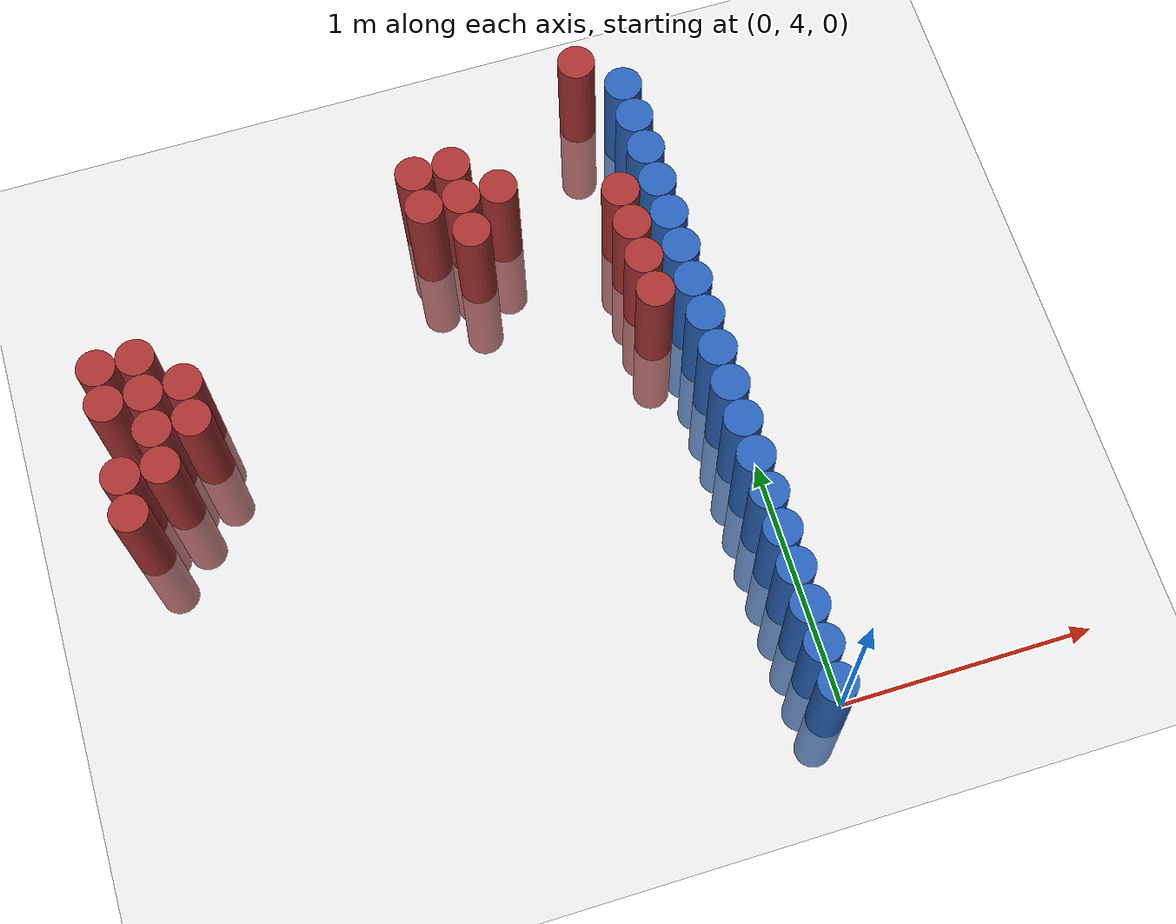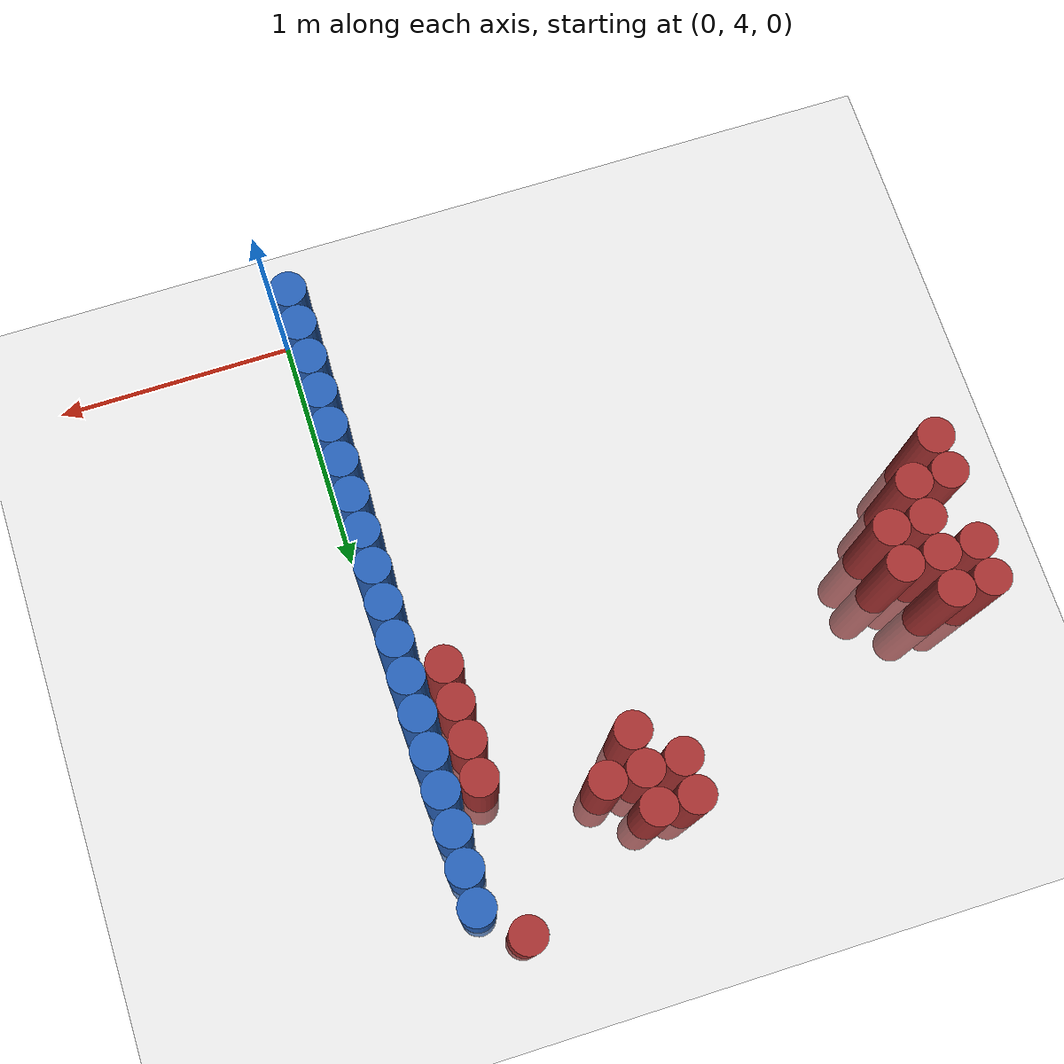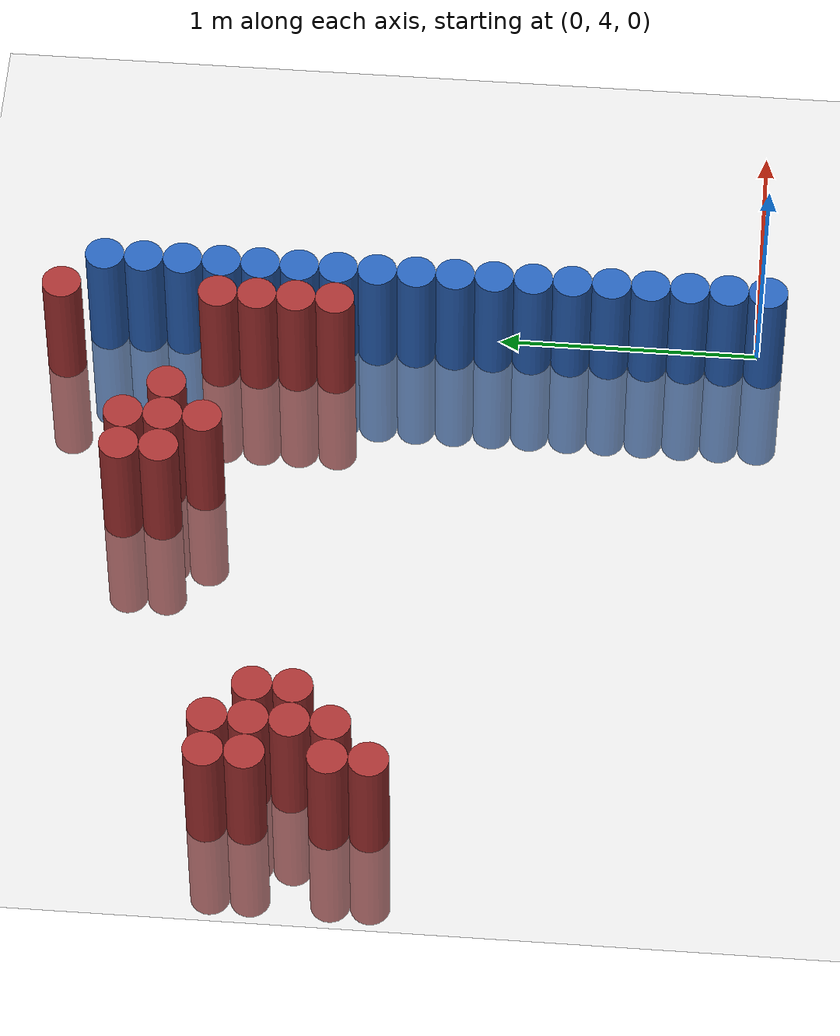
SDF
<sdf version="1.6">
 <world name="default">
  <model name="ground_plane">
   <static>1</static>
   <link name="link">
    <collision name="collision">
     <geometry><plane><normal>0 0 1</normal><size>100 100</size></plane></geometry>
     <surface><friction><ode><mu>100</mu><mu2>50</mu2></ode></friction></surface>
    </collision>
    <visual name="visual">
     <cast_shadows>0</cast_shadows>
     <geometry><plane><normal>0 0 1</normal><size>100 100</size></plane></geometry>
     <material>
      <script><uri>file://media/materials/scripts/gazebo.material</uri><name>Gazebo/Grey</name></script>
     </material>
    </visual>
   </link>
  </model>
  <model name="unit_cylinder_80">
   <static>1</static>
   <pose>-0.075000 3.975000 0.000000 0.000000 0.000000 0.000000</pose>
   <link name="link">
    <inertial>
     <mass>1</mass>
     <inertia><ixx>0.145833</ixx><ixy>0</ixy><ixz>0</ixz><iyy>0.145833</iyy><iyz>0</iyz><izz>0.125</izz></inertia>
    </inertial>
    <collision name="collision">
     <geometry><cylinder><radius>0.075000</radius><length>1</length></cylinder></geometry>
    </collision>
    <visual name="visual">
     <geometry><cylinder><radius>0.075000</radius><length>1</length></cylinder></geometry>
     <material>
      <ambient>0.152000 0.379000 0.720000 1</ambient>
      <diffuse>0.152000 0.379000 0.720000 1</diffuse>
     </material>
     <material>
      <script><name>Gazebo/Grey</name><uri>file://media/materials/scripts/gazebo.material</uri></script>
     </material>
    </visual>
    <sensor name="sensor_contact" type="contact"><contact><collision>collision</collision></contact></sensor>
   </link>
   <plugin filename="gz-sim-touchplugin-system" name="gz::sim::systems::TouchPlugin">
    <target>robot</target>
    <namespace>robot</namespace>
    <time>0.001</time>
    <enabled>true</enabled>
   </plugin>
  </model>
  <model name="unit_cylinder_82">
   <static>1</static>
   <pose>-0.075000 4.125000 0.000000 0.000000 0.000000 0.000000</pose>
   <link name="link">
    <inertial>
     <mass>1</mass>
     <inertia><ixx>0.145833</ixx><ixy>0</ixy><ixz>0</ixz><iyy>0.145833</iyy><iyz>0</iyz><izz>0.125</izz></inertia>
    </inertial>
    <collision name="collision">
     <geometry><cylinder><radius>0.075000</radius><length>1</length></cylinder></geometry>
    </collision>
    <visual name="visual">
     <geometry><cylinder><radius>0.075000</radius><length>1</length></cylinder></geometry>
     <material>
      <ambient>0.152000 0.379000 0.720000 1</ambient>
      <diffuse>0.152000 0.379000 0.720000 1</diffuse>
     </material>
     <material>
      <script><name>Gazebo/Grey</name><uri>file://media/materials/scripts/gazebo.material</uri></script>
     </material>
    </visual>
    <sensor name="sensor_contact" type="contact"><contact><collision>collision</collision></contact></sensor>
   </link>
   <plugin filename="gz-sim-touchplugin-system" name="gz::sim::systems::TouchPlugin">
    <target>robot</target>
    <namespace>robot</namespace>
    <time>0.001</time>
    <enabled>true</enabled>
   </plugin>
  </model>
  <model name="unit_cylinder_84">
   <static>1</static>
   <pose>-0.075000 4.275000 0.000000 0.000000 0.000000 0.000000</pose>
   <link name="link">
    <inertial>
     <mass>1</mass>
     <inertia><ixx>0.145833</ixx><ixy>0</ixy><ixz>0</ixz><iyy>0.145833</iyy><iyz>0</iyz><izz>0.125</izz></inertia>
    </inertial>
    <collision name="collision">
     <geometry><cylinder><radius>0.075000</radius><length>1</length></cylinder></geometry>
    </collision>
    <visual name="visual">
     <geometry><cylinder><radius>0.075000</radius><length>1</length></cylinder></geometry>
     <material>
      <ambient>0.152000 0.379000 0.720000 1</ambient>
      <diffuse>0.152000 0.379000 0.720000 1</diffuse>
     </material>
     <material>
      <script><name>Gazebo/Grey</name><uri>file://media/materials/scripts/gazebo.material</uri></script>
     </material>
    </visual>
    <sensor name="sensor_contact" type="contact"><contact><collision>collision</collision></contact></sensor>
   </link>
   <plugin filename="gz-sim-touchplugin-system" name="gz::sim::systems::TouchPlugin">
    <target>robot</target>
    <namespace>robot</namespace>
    <time>0.001</time>
    <enabled>true</enabled>
   </plugin>
  </model>
  <model name="unit_cylinder_86">
   <static>1</static>
   <pose>-0.075000 4.425000 0.000000 0.000000 0.000000 0.000000</pose>
   <link name="link">
    <inertial>
     <mass>1</mass>
     <inertia><ixx>0.145833</ixx><ixy>0</ixy><ixz>0</ixz><iyy>0.145833</iyy><iyz>0</iyz><izz>0.125</izz></inertia>
    </inertial>
    <collision name="collision">
     <geometry><cylinder><radius>0.075000</radius><length>1</length></cylinder></geometry>
    </collision>
    <visual name="visual">
     <geometry><cylinder><radius>0.075000</radius><length>1</length></cylinder></geometry>
     <material>
      <ambient>0.152000 0.379000 0.720000 1</ambient>
      <diffuse>0.152000 0.379000 0.720000 1</diffuse>
     </material>
     <material>
      <script><name>Gazebo/Grey</name><uri>file://media/materials/scripts/gazebo.material</uri></script>
     </material>
    </visual>
    <sensor name="sensor_contact" type="contact"><contact><collision>collision</collision></contact></sensor>
   </link>
   <plugin filename="gz-sim-touchplugin-system" name="gz::sim::systems::TouchPlugin">
    <target>robot</target>
    <namespace>robot</namespace>
    <time>0.001</time>
    <enabled>true</enabled>
   </plugin>
  </model>
  <model name="unit_cylinder_88">
   <static>1</static>
   <pose>-0.075000 4.575000 0.000000 0.000000 0.000000 0.000000</pose>
   <link name="link">
    <inertial>
     <mass>1</mass>
     <inertia><ixx>0.145833</ixx><ixy>0</ixy><ixz>0</ixz><iyy>0.145833</iyy><iyz>0</iyz><izz>0.125</izz></inertia>
    </inertial>
    <collision name="collision">
     <geometry><cylinder><radius>0.075000</radius><length>1</length></cylinder></geometry>
    </collision>
    <visual name="visual">
     <geometry><cylinder><radius>0.075000</radius><length>1</length></cylinder></geometry>
     <material>
      <ambient>0.152000 0.379000 0.720000 1</ambient>
      <diffuse>0.152000 0.379000 0.720000 1</diffuse>
     </material>
     <material>
      <script><name>Gazebo/Grey</name><uri>file://media/materials/scripts/gazebo.material</uri></script>
     </material>
    </visual>
    <sensor name="sensor_contact" type="contact"><contact><collision>collision</collision></contact></sensor>
   </link>
   <plugin filename="gz-sim-touchplugin-system" name="gz::sim::systems::TouchPlugin">
    <target>robot</target>
    <namespace>robot</namespace>
    <time>0.001</time>
    <enabled>true</enabled>
   </plugin>
  </model>
  <model name="unit_cylinder_90">
   <static>1</static>
   <pose>-0.075000 4.725000 0.000000 0.000000 0.000000 0.000000</pose>
   <link name="link">
    <inertial>
     <mass>1</mass>
     <inertia><ixx>0.145833</ixx><ixy>0</ixy><ixz>0</ixz><iyy>0.145833</iyy><iyz>0</iyz><izz>0.125</izz></inertia>
    </inertial>
    <collision name="collision">
     <geometry><cylinder><radius>0.075000</radius><length>1</length></cylinder></geometry>
    </collision>
    <visual name="visual">
     <geometry><cylinder><radius>0.075000</radius><length>1</length></cylinder></geometry>
     <material>
      <ambient>0.152000 0.379000 0.720000 1</ambient>
      <diffuse>0.152000 0.379000 0.720000 1</diffuse>
     </material>
     <material>
      <script><name>Gazebo/Grey</name><uri>file://media/materials/scripts/gazebo.material</uri></script>
     </material>
    </visual>
    <sensor name="sensor_contact" type="contact"><contact><collision>collision</collision></contact></sensor>
   </link>
   <plugin filename="gz-sim-touchplugin-system" name="gz::sim::systems::TouchPlugin">
    <target>robot</target>
    <namespace>robot</namespace>
    <time>0.001</time>
    <enabled>true</enabled>
   </plugin>
  </model>
  <model name="unit_cylinder_92">
   <static>1</static>
   <pose>-0.075000 4.875000 0.000000 0.000000 0.000000 0.000000</pose>
   <link name="link">
    <inertial>
     <mass>1</mass>
     <inertia><ixx>0.145833</ixx><ixy>0</ixy><ixz>0</ixz><iyy>0.145833</iyy><iyz>0</iyz><izz>0.125</izz></inertia>
    </inertial>
    <collision name="collision">
     <geometry><cylinder><radius>0.075000</radius><length>1</length></cylinder></geometry>
    </collision>
    <visual name="visual">
     <geometry><cylinder><radius>0.075000</radius><length>1</length></cylinder></geometry>
     <material>
      <ambient>0.152000 0.379000 0.720000 1</ambient>
      <diffuse>0.152000 0.379000 0.720000 1</diffuse>
     </material>
     <material>
      <script><name>Gazebo/Grey</name><uri>file://media/materials/scripts/gazebo.material</uri></script>
     </material>
    </visual>
    <sensor name="sensor_contact" type="contact"><contact><collision>collision</collision></contact></sensor>
   </link>
   <plugin filename="gz-sim-touchplugin-system" name="gz::sim::systems::TouchPlugin">
    <target>robot</target>
    <namespace>robot</namespace>
    <time>0.001</time>
    <enabled>true</enabled>
   </plugin>
  </model>
  <model name="unit_cylinder_94">
   <static>1</static>
   <pose>-0.075000 5.025000 0.000000 0.000000 0.000000 0.000000</pose>
   <link name="link">
    <inertial>
     <mass>1</mass>
     <inertia><ixx>0.145833</ixx><ixy>0</ixy><ixz>0</ixz><iyy>0.145833</iyy><iyz>0</iyz><izz>0.125</izz></inertia>
    </inertial>
    <collision name="collision">
     <geometry><cylinder><radius>0.075000</radius><length>1</length></cylinder></geometry>
    </collision>
    <visual name="visual">
     <geometry><cylinder><radius>0.075000</radius><length>1</length></cylinder></geometry>
     <material>
      <ambient>0.152000 0.379000 0.720000 1</ambient>
      <diffuse>0.152000 0.379000 0.720000 1</diffuse>
     </material>
     <material>
      <script><name>Gazebo/Grey</name><uri>file://media/materials/scripts/gazebo.material</uri></script>
     </material>
    </visual>
    <sensor name="sensor_contact" type="contact"><contact><collision>collision</collision></contact></sensor>
   </link>
   <plugin filename="gz-sim-touchplugin-system" name="gz::sim::systems::TouchPlugin">
    <target>robot</target>
    <namespace>robot</namespace>
    <time>0.001</time>
    <enabled>true</enabled>
   </plugin>
  </model>
  <model name="unit_cylinder_225">
   <static>1</static>
   <pose>-2.325000 5.325000 0.000000 0.000000 0.000000 0.000000</pose>
   <link name="link">
    <inertial>
     <mass>1</mass>
     <inertia><ixx>0.145833</ixx><ixy>0</ixy><ixz>0</ixz><iyy>0.145833</iyy><iyz>0</iyz><izz>0.125</izz></inertia>
    </inertial>
    <collision name="collision">
     <geometry><cylinder><radius>0.075000</radius><length>1</length></cylinder></geometry>
    </collision>
    <visual name="visual">
     <geometry><cylinder><radius>0.075000</radius><length>1</length></cylinder></geometry>
     <material>
      <ambient>0.648000 0.192000 0.192000 1</ambient>
      <diffuse>0.648000 0.192000 0.192000 1</diffuse>
     </material>
     <material>
      <script><name>Gazebo/Grey</name><uri>file://media/materials/scripts/gazebo.material</uri></script>
     </material>
    </visual>
    <sensor name="sensor_contact" type="contact"><contact><collision>collision</collision></contact></sensor>
   </link>
   <plugin filename="gz-sim-touchplugin-system" name="gz::sim::systems::TouchPlugin">
    <target>robot</target>
    <namespace>robot</namespace>
    <time>0.001</time>
    <enabled>true</enabled>
   </plugin>
  </model>
  <model name="unit_cylinder_226">
   <static>1</static>
   <pose>-2.325000 5.475000 0.000000 0.000000 0.000000 0.000000</pose>
   <link name="link">
    <inertial>
     <mass>1</mass>
     <inertia><ixx>0.145833</ixx><ixy>0</ixy><ixz>0</ixz><iyy>0.145833</iyy><iyz>0</iyz><izz>0.125</izz></inertia>
    </inertial>
    <collision name="collision">
     <geometry><cylinder><radius>0.075000</radius><length>1</length></cylinder></geometry>
    </collision>
    <visual name="visual">
     <geometry><cylinder><radius>0.075000</radius><length>1</length></cylinder></geometry>
     <material>
      <ambient>0.648000 0.192000 0.192000 1</ambient>
      <diffuse>0.648000 0.192000 0.192000 1</diffuse>
     </material>
     <material>
      <script><name>Gazebo/Grey</name><uri>file://media/materials/scripts/gazebo.material</uri></script>
     </material>
    </visual>
    <sensor name="sensor_contact" type="contact"><contact><collision>collision</collision></contact></sensor>
   </link>
   <plugin filename="gz-sim-touchplugin-system" name="gz::sim::systems::TouchPlugin">
    <target>robot</target>
    <namespace>robot</namespace>
    <time>0.001</time>
    <enabled>true</enabled>
   </plugin>
  </model>
  <model name="unit_cylinder_227">
   <static>1</static>
   <pose>-2.325000 5.775000 0.000000 0.000000 0.000000 0.000000</pose>
   <link name="link">
    <inertial>
     <mass>1</mass>
     <inertia><ixx>0.145833</ixx><ixy>0</ixy><ixz>0</ixz><iyy>0.145833</iyy><iyz>0</iyz><izz>0.125</izz></inertia>
    </inertial>
    <collision name="collision">
     <geometry><cylinder><radius>0.075000</radius><length>1</length></cylinder></geometry>
    </collision>
    <visual name="visual">
     <geometry><cylinder><radius>0.075000</radius><length>1</length></cylinder></geometry>
     <material>
      <ambient>0.648000 0.192000 0.192000 1</ambient>
      <diffuse>0.648000 0.192000 0.192000 1</diffuse>
     </material>
     <material>
      <script><name>Gazebo/Grey</name><uri>file://media/materials/scripts/gazebo.material</uri></script>
     </material>
    </visual>
    <sensor name="sensor_contact" type="contact"><contact><collision>collision</collision></contact></sensor>
   </link>
   <plugin filename="gz-sim-touchplugin-system" name="gz::sim::systems::TouchPlugin">
    <target>robot</target>
    <namespace>robot</namespace>
    <time>0.001</time>
    <enabled>true</enabled>
   </plugin>
  </model>
  <model name="unit_cylinder_228">
   <static>1</static>
   <pose>-2.325000 5.925000 0.000000 0.000000 0.000000 0.000000</pose>
   <link name="link">
    <inertial>
     <mass>1</mass>
     <inertia><ixx>0.145833</ixx><ixy>0</ixy><ixz>0</ixz><iyy>0.145833</iyy><iyz>0</iyz><izz>0.125</izz></inertia>
    </inertial>
    <collision name="collision">
     <geometry><cylinder><radius>0.075000</radius><length>1</length></cylinder></geometry>
    </collision>
    <visual name="visual">
     <geometry><cylinder><radius>0.075000</radius><length>1</length></cylinder></geometry>
     <material>
      <ambient>0.648000 0.192000 0.192000 1</ambient>
      <diffuse>0.648000 0.192000 0.192000 1</diffuse>
     </material>
     <material>
      <script><name>Gazebo/Grey</name><uri>file://media/materials/scripts/gazebo.material</uri></script>
     </material>
    </visual>
    <sensor name="sensor_contact" type="contact"><contact><collision>collision</collision></contact></sensor>
   </link>
   <plugin filename="gz-sim-touchplugin-system" name="gz::sim::systems::TouchPlugin">
    <target>robot</target>
    <namespace>robot</namespace>
    <time>0.001</time>
    <enabled>true</enabled>
   </plugin>
  </model>
  <model name="unit_cylinder_232">
   <static>1</static>
   <pose>-2.175000 5.475000 0.000000 0.000000 0.000000 0.000000</pose>
   <link name="link">
    <inertial>
     <mass>1</mass>
     <inertia><ixx>0.145833</ixx><ixy>0</ixy><ixz>0</ixz><iyy>0.145833</iyy><iyz>0</iyz><izz>0.125</izz></inertia>
    </inertial>
    <collision name="collision">
     <geometry><cylinder><radius>0.075000</radius><length>1</length></cylinder></geometry>
    </collision>
    <visual name="visual">
     <geometry><cylinder><radius>0.075000</radius><length>1</length></cylinder></geometry>
     <material>
      <ambient>0.648000 0.192000 0.192000 1</ambient>
      <diffuse>0.648000 0.192000 0.192000 1</diffuse>
     </material>
     <material>
      <script><name>Gazebo/Grey</name><uri>file://media/materials/scripts/gazebo.material</uri></script>
     </material>
    </visual>
    <sensor name="sensor_contact" type="contact"><contact><collision>collision</collision></contact></sensor>
   </link>
   <plugin filename="gz-sim-touchplugin-system" name="gz::sim::systems::TouchPlugin">
    <target>robot</target>
    <namespace>robot</namespace>
    <time>0.001</time>
    <enabled>true</enabled>
   </plugin>
  </model>
  <model name="unit_cylinder_233">
   <static>1</static>
   <pose>-2.175000 5.625000 0.000000 0.000000 0.000000 0.000000</pose>
   <link name="link">
    <inertial>
     <mass>1</mass>
     <inertia><ixx>0.145833</ixx><ixy>0</ixy><ixz>0</ixz><iyy>0.145833</iyy><iyz>0</iyz><izz>0.125</izz></inertia>
    </inertial>
    <collision name="collision">
     <geometry><cylinder><radius>0.075000</radius><length>1</length></cylinder></geometry>
    </collision>
    <visual name="visual">
     <geometry><cylinder><radius>0.075000</radius><length>1</length></cylinder></geometry>
     <material>
      <ambient>0.648000 0.192000 0.192000 1</ambient>
      <diffuse>0.648000 0.192000 0.192000 1</diffuse>
     </material>
     <material>
      <script><name>Gazebo/Grey</name><uri>file://media/materials/scripts/gazebo.material</uri></script>
     </material>
    </visual>
    <sensor name="sensor_contact" type="contact"><contact><collision>collision</collision></contact></sensor>
   </link>
   <plugin filename="gz-sim-touchplugin-system" name="gz::sim::systems::TouchPlugin">
    <target>robot</target>
    <namespace>robot</namespace>
    <time>0.001</time>
    <enabled>true</enabled>
   </plugin>
  </model>
  <model name="unit_cylinder_234">
   <static>1</static>
   <pose>-2.175000 5.775000 0.000000 0.000000 0.000000 0.000000</pose>
   <link name="link">
    <inertial>
     <mass>1</mass>
     <inertia><ixx>0.145833</ixx><ixy>0</ixy><ixz>0</ixz><iyy>0.145833</iyy><iyz>0</iyz><izz>0.125</izz></inertia>
    </inertial>
    <collision name="collision">
     <geometry><cylinder><radius>0.075000</radius><length>1</length></cylinder></geometry>
    </collision>
    <visual name="visual">
     <geometry><cylinder><radius>0.075000</radius><length>1</length></cylinder></geometry>
     <material>
      <ambient>0.648000 0.192000 0.192000 1</ambient>
      <diffuse>0.648000 0.192000 0.192000 1</diffuse>
     </material>
     <material>
      <script><name>Gazebo/Grey</name><uri>file://media/materials/scripts/gazebo.material</uri></script>
     </material>
    </visual>
    <sensor name="sensor_contact" type="contact"><contact><collision>collision</collision></contact></sensor>
   </link>
   <plugin filename="gz-sim-touchplugin-system" name="gz::sim::systems::TouchPlugin">
    <target>robot</target>
    <namespace>robot</namespace>
    <time>0.001</time>
    <enabled>true</enabled>
   </plugin>
  </model>
  <model name="unit_cylinder_235">
   <static>1</static>
   <pose>-2.175000 5.925000 0.000000 0.000000 0.000000 0.000000</pose>
   <link name="link">
    <inertial>
     <mass>1</mass>
     <inertia><ixx>0.145833</ixx><ixy>0</ixy><ixz>0</ixz><iyy>0.145833</iyy><iyz>0</iyz><izz>0.125</izz></inertia>
    </inertial>
    <collision name="collision">
     <geometry><cylinder><radius>0.075000</radius><length>1</length></cylinder></geometry>
    </collision>
    <visual name="visual">
     <geometry><cylinder><radius>0.075000</radius><length>1</length></cylinder></geometry>
     <material>
      <ambient>0.648000 0.192000 0.192000 1</ambient>
      <diffuse>0.648000 0.192000 0.192000 1</diffuse>
     </material>
     <material>
      <script><name>Gazebo/Grey</name><uri>file://media/materials/scripts/gazebo.material</uri></script>
     </material>
    </visual>
    <sensor name="sensor_contact" type="contact"><contact><collision>collision</collision></contact></sensor>
   </link>
   <plugin filename="gz-sim-touchplugin-system" name="gz::sim::systems::TouchPlugin">
    <target>robot</target>
    <namespace>robot</namespace>
    <time>0.001</time>
    <enabled>true</enabled>
   </plugin>
  </model>
  <model name="unit_cylinder_239">
   <static>1</static>
   <pose>-2.025000 5.625000 0.000000 0.000000 0.000000 0.000000</pose>
   <link name="link">
    <inertial>
     <mass>1</mass>
     <inertia><ixx>0.145833</ixx><ixy>0</ixy><ixz>0</ixz><iyy>0.145833</iyy><iyz>0</iyz><izz>0.125</izz></inertia>
    </inertial>
    <collision name="collision">
     <geometry><cylinder><radius>0.075000</radius><length>1</length></cylinder></geometry>
    </collision>
    <visual name="visual">
     <geometry><cylinder><radius>0.075000</radius><length>1</length></cylinder></geometry>
     <material>
      <ambient>0.648000 0.192000 0.192000 1</ambient>
      <diffuse>0.648000 0.192000 0.192000 1</diffuse>
     </material>
     <material>
      <script><name>Gazebo/Grey</name><uri>file://media/materials/scripts/gazebo.material</uri></script>
     </material>
    </visual>
    <sensor name="sensor_contact" type="contact"><contact><collision>collision</collision></contact></sensor>
   </link>
   <plugin filename="gz-sim-touchplugin-system" name="gz::sim::systems::TouchPlugin">
    <target>robot</target>
    <namespace>robot</namespace>
    <time>0.001</time>
    <enabled>true</enabled>
   </plugin>
  </model>
  <model name="unit_cylinder_240">
   <static>1</static>
   <pose>-2.025000 5.775000 0.000000 0.000000 0.000000 0.000000</pose>
   <link name="link">
    <inertial>
     <mass>1</mass>
     <inertia><ixx>0.145833</ixx><ixy>0</ixy><ixz>0</ixz><iyy>0.145833</iyy><iyz>0</iyz><izz>0.125</izz></inertia>
    </inertial>
    <collision name="collision">
     <geometry><cylinder><radius>0.075000</radius><length>1</length></cylinder></geometry>
    </collision>
    <visual name="visual">
     <geometry><cylinder><radius>0.075000</radius><length>1</length></cylinder></geometry>
     <material>
      <ambient>0.648000 0.192000 0.192000 1</ambient>
      <diffuse>0.648000 0.192000 0.192000 1</diffuse>
     </material>
     <material>
      <script><name>Gazebo/Grey</name><uri>file://media/materials/scripts/gazebo.material</uri></script>
     </material>
    </visual>
    <sensor name="sensor_contact" type="contact"><contact><collision>collision</collision></contact></sensor>
   </link>
   <plugin filename="gz-sim-touchplugin-system" name="gz::sim::systems::TouchPlugin">
    <target>robot</target>
    <namespace>robot</namespace>
    <time>0.001</time>
    <enabled>true</enabled>
   </plugin>
  </model>
  <model name="unit_cylinder_262">
   <static>1</static>
   <pose>-0.975000 6.225000 0.000000 0.000000 0.000000 0.000000</pose>
   <link name="link">
    <inertial>
     <mass>1</mass>
     <inertia><ixx>0.145833</ixx><ixy>0</ixy><ixz>0</ixz><iyy>0.145833</iyy><iyz>0</iyz><izz>0.125</izz></inertia>
    </inertial>
    <collision name="collision">
     <geometry><cylinder><radius>0.075000</radius><length>1</length></cylinder></geometry>
    </collision>
    <visual name="visual">
     <geometry><cylinder><radius>0.075000</radius><length>1</length></cylinder></geometry>
     <material>
      <ambient>0.648000 0.192000 0.192000 1</ambient>
      <diffuse>0.648000 0.192000 0.192000 1</diffuse>
     </material>
     <material>
      <script><name>Gazebo/Grey</name><uri>file://media/materials/scripts/gazebo.material</uri></script>
     </material>
    </visual>
    <sensor name="sensor_contact" type="contact"><contact><collision>collision</collision></contact></sensor>
   </link>
   <plugin filename="gz-sim-touchplugin-system" name="gz::sim::systems::TouchPlugin">
    <target>robot</target>
    <namespace>robot</namespace>
    <time>0.001</time>
    <enabled>true</enabled>
   </plugin>
  </model>
  <model name="unit_cylinder_263">
   <static>1</static>
   <pose>-0.975000 6.375000 0.000000 0.000000 0.000000 0.000000</pose>
   <link name="link">
    <inertial>
     <mass>1</mass>
     <inertia><ixx>0.145833</ixx><ixy>0</ixy><ixz>0</ixz><iyy>0.145833</iyy><iyz>0</iyz><izz>0.125</izz></inertia>
    </inertial>
    <collision name="collision">
     <geometry><cylinder><radius>0.075000</radius><length>1</length></cylinder></geometry>
    </collision>
    <visual name="visual">
     <geometry><cylinder><radius>0.075000</radius><length>1</length></cylinder></geometry>
     <material>
      <ambient>0.648000 0.192000 0.192000 1</ambient>
      <diffuse>0.648000 0.192000 0.192000 1</diffuse>
     </material>
     <material>
      <script><name>Gazebo/Grey</name><uri>file://media/materials/scripts/gazebo.material</uri></script>
     </material>
    </visual>
    <sensor name="sensor_contact" type="contact"><contact><collision>collision</collision></contact></sensor>
   </link>
   <plugin filename="gz-sim-touchplugin-system" name="gz::sim::systems::TouchPlugin">
    <target>robot</target>
    <namespace>robot</namespace>
    <time>0.001</time>
    <enabled>true</enabled>
   </plugin>
  </model>
  <model name="unit_cylinder_264">
   <static>1</static>
   <pose>-0.825000 6.075000 0.000000 0.000000 0.000000 0.000000</pose>
   <link name="link">
    <inertial>
     <mass>1</mass>
     <inertia><ixx>0.145833</ixx><ixy>0</ixy><ixz>0</ixz><iyy>0.145833</iyy><iyz>0</iyz><izz>0.125</izz></inertia>
    </inertial>
    <collision name="collision">
     <geometry><cylinder><radius>0.075000</radius><length>1</length></cylinder></geometry>
    </collision>
    <visual name="visual">
     <geometry><cylinder><radius>0.075000</radius><length>1</length></cylinder></geometry>
     <material>
      <ambient>0.648000 0.192000 0.192000 1</ambient>
      <diffuse>0.648000 0.192000 0.192000 1</diffuse>
     </material>
     <material>
      <script><name>Gazebo/Grey</name><uri>file://media/materials/scripts/gazebo.material</uri></script>
     </material>
    </visual>
    <sensor name="sensor_contact" type="contact"><contact><collision>collision</collision></contact></sensor>
   </link>
   <plugin filename="gz-sim-touchplugin-system" name="gz::sim::systems::TouchPlugin">
    <target>robot</target>
    <namespace>robot</namespace>
    <time>0.001</time>
    <enabled>true</enabled>
   </plugin>
  </model>
  <model name="unit_cylinder_265">
   <static>1</static>
   <pose>-0.825000 6.225000 0.000000 0.000000 0.000000 0.000000</pose>
   <link name="link">
    <inertial>
     <mass>1</mass>
     <inertia><ixx>0.145833</ixx><ixy>0</ixy><ixz>0</ixz><iyy>0.145833</iyy><iyz>0</iyz><izz>0.125</izz></inertia>
    </inertial>
    <collision name="collision">
     <geometry><cylinder><radius>0.075000</radius><length>1</length></cylinder></geometry>
    </collision>
    <visual name="visual">
     <geometry><cylinder><radius>0.075000</radius><length>1</length></cylinder></geometry>
     <material>
      <ambient>0.648000 0.192000 0.192000 1</ambient>
      <diffuse>0.648000 0.192000 0.192000 1</diffuse>
     </material>
     <material>
      <script><name>Gazebo/Grey</name><uri>file://media/materials/scripts/gazebo.material</uri></script>
     </material>
    </visual>
    <sensor name="sensor_contact" type="contact"><contact><collision>collision</collision></contact></sensor>
   </link>
   <plugin filename="gz-sim-touchplugin-system" name="gz::sim::systems::TouchPlugin">
    <target>robot</target>
    <namespace>robot</namespace>
    <time>0.001</time>
    <enabled>true</enabled>
   </plugin>
  </model>
  <model name="unit_cylinder_266">
   <static>1</static>
   <pose>-0.825000 6.375000 0.000000 0.000000 0.000000 0.000000</pose>
   <link name="link">
    <inertial>
     <mass>1</mass>
     <inertia><ixx>0.145833</ixx><ixy>0</ixy><ixz>0</ixz><iyy>0.145833</iyy><iyz>0</iyz><izz>0.125</izz></inertia>
    </inertial>
    <collision name="collision">
     <geometry><cylinder><radius>0.075000</radius><length>1</length></cylinder></geometry>
    </collision>
    <visual name="visual">
     <geometry><cylinder><radius>0.075000</radius><length>1</length></cylinder></geometry>
     <material>
      <ambient>0.648000 0.192000 0.192000 1</ambient>
      <diffuse>0.648000 0.192000 0.192000 1</diffuse>
     </material>
     <material>
      <script><name>Gazebo/Grey</name><uri>file://media/materials/scripts/gazebo.material</uri></script>
     </material>
    </visual>
    <sensor name="sensor_contact" type="contact"><contact><collision>collision</collision></contact></sensor>
   </link>
   <plugin filename="gz-sim-touchplugin-system" name="gz::sim::systems::TouchPlugin">
    <target>robot</target>
    <namespace>robot</namespace>
    <time>0.001</time>
    <enabled>true</enabled>
   </plugin>
  </model>
  <model name="unit_cylinder_267">
   <static>1</static>
   <pose>-0.675000 6.225000 0.000000 0.000000 0.000000 0.000000</pose>
   <link name="link">
    <inertial>
     <mass>1</mass>
     <inertia><ixx>0.145833</ixx><ixy>0</ixy><ixz>0</ixz><iyy>0.145833</iyy><iyz>0</iyz><izz>0.125</izz></inertia>
    </inertial>
    <collision name="collision">
     <geometry><cylinder><radius>0.075000</radius><length>1</length></cylinder></geometry>
    </collision>
    <visual name="visual">
     <geometry><cylinder><radius>0.075000</radius><length>1</length></cylinder></geometry>
     <material>
      <ambient>0.648000 0.192000 0.192000 1</ambient>
      <diffuse>0.648000 0.192000 0.192000 1</diffuse>
     </material>
     <material>
      <script><name>Gazebo/Grey</name><uri>file://media/materials/scripts/gazebo.material</uri></script>
     </material>
    </visual>
    <sensor name="sensor_contact" type="contact"><contact><collision>collision</collision></contact></sensor>
   </link>
   <plugin filename="gz-sim-touchplugin-system" name="gz::sim::systems::TouchPlugin">
    <target>robot</target>
    <namespace>robot</namespace>
    <time>0.001</time>
    <enabled>true</enabled>
   </plugin>
  </model>
  <model name="unit_cylinder_268">
   <static>1</static>
   <pose>-0.225000 5.625000 0.000000 0.000000 0.000000 0.000000</pose>
   <link name="link">
    <inertial>
     <mass>1</mass>
     <inertia><ixx>0.145833</ixx><ixy>0</ixy><ixz>0</ixz><iyy>0.145833</iyy><iyz>0</iyz><izz>0.125</izz></inertia>
    </inertial>
    <collision name="collision">
     <geometry><cylinder><radius>0.075000</radius><length>1</length></cylinder></geometry>
    </collision>
    <visual name="visual">
     <geometry><cylinder><radius>0.075000</radius><length>1</length></cylinder></geometry>
     <material>
      <ambient>0.648000 0.192000 0.192000 1</ambient>
      <diffuse>0.648000 0.192000 0.192000 1</diffuse>
     </material>
     <material>
      <script><name>Gazebo/Grey</name><uri>file://media/materials/scripts/gazebo.material</uri></script>
     </material>
    </visual>
    <sensor name="sensor_contact" type="contact"><contact><collision>collision</collision></contact></sensor>
   </link>
   <plugin filename="gz-sim-touchplugin-system" name="gz::sim::systems::TouchPlugin">
    <target>robot</target>
    <namespace>robot</namespace>
    <time>0.001</time>
    <enabled>true</enabled>
   </plugin>
  </model>
  <model name="unit_cylinder_269">
   <static>1</static>
   <pose>-0.225000 5.775000 0.000000 0.000000 0.000000 0.000000</pose>
   <link name="link">
    <inertial>
     <mass>1</mass>
     <inertia><ixx>0.145833</ixx><ixy>0</ixy><ixz>0</ixz><iyy>0.145833</iyy><iyz>0</iyz><izz>0.125</izz></inertia>
    </inertial>
    <collision name="collision">
     <geometry><cylinder><radius>0.075000</radius><length>1</length></cylinder></geometry>
    </collision>
    <visual name="visual">
     <geometry><cylinder><radius>0.075000</radius><length>1</length></cylinder></geometry>
     <material>
      <ambient>0.648000 0.192000 0.192000 1</ambient>
      <diffuse>0.648000 0.192000 0.192000 1</diffuse>
     </material>
     <material>
      <script><name>Gazebo/Grey</name><uri>file://media/materials/scripts/gazebo.material</uri></script>
     </material>
    </visual>
    <sensor name="sensor_contact" type="contact"><contact><collision>collision</collision></contact></sensor>
   </link>
   <plugin filename="gz-sim-touchplugin-system" name="gz::sim::systems::TouchPlugin">
    <target>robot</target>
    <namespace>robot</namespace>
    <time>0.001</time>
    <enabled>true</enabled>
   </plugin>
  </model>
  <model name="unit_cylinder_270">
   <static>1</static>
   <pose>-0.225000 5.925000 0.000000 0.000000 0.000000 0.000000</pose>
   <link name="link">
    <inertial>
     <mass>1</mass>
     <inertia><ixx>0.145833</ixx><ixy>0</ixy><ixz>0</ixz><iyy>0.145833</iyy><iyz>0</iyz><izz>0.125</izz></inertia>
    </inertial>
    <collision name="collision">
     <geometry><cylinder><radius>0.075000</radius><length>1</length></cylinder></geometry>
    </collision>
    <visual name="visual">
     <geometry><cylinder><radius>0.075000</radius><length>1</length></cylinder></geometry>
     <material>
      <ambient>0.648000 0.192000 0.192000 1</ambient>
      <diffuse>0.648000 0.192000 0.192000 1</diffuse>
     </material>
     <material>
      <script><name>Gazebo/Grey</name><uri>file://media/materials/scripts/gazebo.material</uri></script>
     </material>
    </visual>
    <sensor name="sensor_contact" type="contact"><contact><collision>collision</collision></contact></sensor>
   </link>
   <plugin filename="gz-sim-touchplugin-system" name="gz::sim::systems::TouchPlugin">
    <target>robot</target>
    <namespace>robot</namespace>
    <time>0.001</time>
    <enabled>true</enabled>
   </plugin>
  </model>
  <model name="unit_cylinder_271">
   <static>1</static>
   <pose>-0.225000 6.075000 0.000000 0.000000 0.000000 0.000000</pose>
   <link name="link">
    <inertial>
     <mass>1</mass>
     <inertia><ixx>0.145833</ixx><ixy>0</ixy><ixz>0</ixz><iyy>0.145833</iyy><iyz>0</iyz><izz>0.125</izz></inertia>
    </inertial>
    <collision name="collision">
     <geometry><cylinder><radius>0.075000</radius><length>1</length></cylinder></geometry>
    </collision>
    <visual name="visual">
     <geometry><cylinder><radius>0.075000</radius><length>1</length></cylinder></geometry>
     <material>
      <ambient>0.648000 0.192000 0.192000 1</ambient>
      <diffuse>0.648000 0.192000 0.192000 1</diffuse>
     </material>
     <material>
      <script><name>Gazebo/Grey</name><uri>file://media/materials/scripts/gazebo.material</uri></script>
     </material>
    </visual>
    <sensor name="sensor_contact" type="contact"><contact><collision>collision</collision></contact></sensor>
   </link>
   <plugin filename="gz-sim-touchplugin-system" name="gz::sim::systems::TouchPlugin">
    <target>robot</target>
    <namespace>robot</namespace>
    <time>0.001</time>
    <enabled>true</enabled>
   </plugin>
  </model>
  <model name="unit_cylinder_272">
   <static>1</static>
   <pose>-0.225000 6.675000 0.000000 0.000000 0.000000 0.000000</pose>
   <link name="link">
    <inertial>
     <mass>1</mass>
     <inertia><ixx>0.145833</ixx><ixy>0</ixy><ixz>0</ixz><iyy>0.145833</iyy><iyz>0</iyz><izz>0.125</izz></inertia>
    </inertial>
    <collision name="collision">
     <geometry><cylinder><radius>0.075000</radius><length>1</length></cylinder></geometry>
    </collision>
    <visual name="visual">
     <geometry><cylinder><radius>0.075000</radius><length>1</length></cylinder></geometry>
     <material>
      <ambient>0.648000 0.192000 0.192000 1</ambient>
      <diffuse>0.648000 0.192000 0.192000 1</diffuse>
     </material>
     <material>
      <script><name>Gazebo/Grey</name><uri>file://media/materials/scripts/gazebo.material</uri></script>
     </material>
    </visual>
    <sensor name="sensor_contact" type="contact"><contact><collision>collision</collision></contact></sensor>
   </link>
   <plugin filename="gz-sim-touchplugin-system" name="gz::sim::systems::TouchPlugin">
    <target>robot</target>
    <namespace>robot</namespace>
    <time>0.001</time>
    <enabled>true</enabled>
   </plugin>
  </model>
  <model name="unit_cylinder_283">
   <static>1</static>
   <pose>-0.075000 5.175000 0.000000 0.000000 0.000000 0.000000</pose>
   <link name="link">
    <inertial>
     <mass>1</mass>
     <inertia><ixx>0.145833</ixx><ixy>0</ixy><ixz>0</ixz><iyy>0.145833</iyy><iyz>0</iyz><izz>0.125</izz></inertia>
    </inertial>
    <collision name="collision">
     <geometry><cylinder><radius>0.075000</radius><length>1</length></cylinder></geometry>
    </collision>
    <visual name="visual">
     <geometry><cylinder><radius>0.075000</radius><length>1</length></cylinder></geometry>
     <material>
      <ambient>0.152000 0.379000 0.720000 1</ambient>
      <diffuse>0.152000 0.379000 0.720000 1</diffuse>
     </material>
     <material>
      <script><name>Gazebo/Grey</name><uri>file://media/materials/scripts/gazebo.material</uri></script>
     </material>
    </visual>
    <sensor name="sensor_contact" type="contact"><contact><collision>collision</collision></contact></sensor>
   </link>
   <plugin filename="gz-sim-touchplugin-system" name="gz::sim::systems::TouchPlugin">
    <target>robot</target>
    <namespace>robot</namespace>
    <time>0.001</time>
    <enabled>true</enabled>
   </plugin>
  </model>
  <model name="unit_cylinder_284">
   <static>1</static>
   <pose>-0.075000 5.325000 0.000000 0.000000 0.000000 0.000000</pose>
   <link name="link">
    <inertial>
     <mass>1</mass>
     <inertia><ixx>0.145833</ixx><ixy>0</ixy><ixz>0</ixz><iyy>0.145833</iyy><iyz>0</iyz><izz>0.125</izz></inertia>
    </inertial>
    <collision name="collision">
     <geometry><cylinder><radius>0.075000</radius><length>1</length></cylinder></geometry>
    </collision>
    <visual name="visual">
     <geometry><cylinder><radius>0.075000</radius><length>1</length></cylinder></geometry>
     <material>
      <ambient>0.152000 0.379000 0.720000 1</ambient>
      <diffuse>0.152000 0.379000 0.720000 1</diffuse>
     </material>
     <material>
      <script><name>Gazebo/Grey</name><uri>file://media/materials/scripts/gazebo.material</uri></script>
     </material>
    </visual>
    <sensor name="sensor_contact" type="contact"><contact><collision>collision</collision></contact></sensor>
   </link>
   <plugin filename="gz-sim-touchplugin-system" name="gz::sim::systems::TouchPlugin">
    <target>robot</target>
    <namespace>robot</namespace>
    <time>0.001</time>
    <enabled>true</enabled>
   </plugin>
  </model>
  <model name="unit_cylinder_285">
   <static>1</static>
   <pose>-0.075000 5.475000 0.000000 0.000000 0.000000 0.000000</pose>
   <link name="link">
    <inertial>
     <mass>1</mass>
     <inertia><ixx>0.145833</ixx><ixy>0</ixy><ixz>0</ixz><iyy>0.145833</iyy><iyz>0</iyz><izz>0.125</izz></inertia>
    </inertial>
    <collision name="collision">
     <geometry><cylinder><radius>0.075000</radius><length>1</length></cylinder></geometry>
    </collision>
    <visual name="visual">
     <geometry><cylinder><radius>0.075000</radius><length>1</length></cylinder></geometry>
     <material>
      <ambient>0.152000 0.379000 0.720000 1</ambient>
      <diffuse>0.152000 0.379000 0.720000 1</diffuse>
     </material>
     <material>
      <script><name>Gazebo/Grey</name><uri>file://media/materials/scripts/gazebo.material</uri></script>
     </material>
    </visual>
    <sensor name="sensor_contact" type="contact"><contact><collision>collision</collision></contact></sensor>
   </link>
   <plugin filename="gz-sim-touchplugin-system" name="gz::sim::systems::TouchPlugin">
    <target>robot</target>
    <namespace>robot</namespace>
    <time>0.001</time>
    <enabled>true</enabled>
   </plugin>
  </model>
  <model name="unit_cylinder_286">
   <static>1</static>
   <pose>-0.075000 5.625000 0.000000 0.000000 0.000000 0.000000</pose>
   <link name="link">
    <inertial>
     <mass>1</mass>
     <inertia><ixx>0.145833</ixx><ixy>0</ixy><ixz>0</ixz><iyy>0.145833</iyy><iyz>0</iyz><izz>0.125</izz></inertia>
    </inertial>
    <collision name="collision">
     <geometry><cylinder><radius>0.075000</radius><length>1</length></cylinder></geometry>
    </collision>
    <visual name="visual">
     <geometry><cylinder><radius>0.075000</radius><length>1</length></cylinder></geometry>
     <material>
      <ambient>0.152000 0.379000 0.720000 1</ambient>
      <diffuse>0.152000 0.379000 0.720000 1</diffuse>
     </material>
     <material>
      <script><name>Gazebo/Grey</name><uri>file://media/materials/scripts/gazebo.material</uri></script>
     </material>
    </visual>
    <sensor name="sensor_contact" type="contact"><contact><collision>collision</collision></contact></sensor>
   </link>
   <plugin filename="gz-sim-touchplugin-system" name="gz::sim::systems::TouchPlugin">
    <target>robot</target>
    <namespace>robot</namespace>
    <time>0.001</time>
    <enabled>true</enabled>
   </plugin>
  </model>
  <model name="unit_cylinder_287">
   <static>1</static>
   <pose>-0.075000 5.775000 0.000000 0.000000 0.000000 0.000000</pose>
   <link name="link">
    <inertial>
     <mass>1</mass>
     <inertia><ixx>0.145833</ixx><ixy>0</ixy><ixz>0</ixz><iyy>0.145833</iyy><iyz>0</iyz><izz>0.125</izz></inertia>
    </inertial>
    <collision name="collision">
     <geometry><cylinder><radius>0.075000</radius><length>1</length></cylinder></geometry>
    </collision>
    <visual name="visual">
     <geometry><cylinder><radius>0.075000</radius><length>1</length></cylinder></geometry>
     <material>
      <ambient>0.152000 0.379000 0.720000 1</ambient>
      <diffuse>0.152000 0.379000 0.720000 1</diffuse>
     </material>
     <material>
      <script><name>Gazebo/Grey</name><uri>file://media/materials/scripts/gazebo.material</uri></script>
     </material>
    </visual>
    <sensor name="sensor_contact" type="contact"><contact><collision>collision</collision></contact></sensor>
   </link>
   <plugin filename="gz-sim-touchplugin-system" name="gz::sim::systems::TouchPlugin">
    <target>robot</target>
    <namespace>robot</namespace>
    <time>0.001</time>
    <enabled>true</enabled>
   </plugin>
  </model>
  <model name="unit_cylinder_288">
   <static>1</static>
   <pose>-0.075000 5.925000 0.000000 0.000000 0.000000 0.000000</pose>
   <link name="link">
    <inertial>
     <mass>1</mass>
     <inertia><ixx>0.145833</ixx><ixy>0</ixy><ixz>0</ixz><iyy>0.145833</iyy><iyz>0</iyz><izz>0.125</izz></inertia>
    </inertial>
    <collision name="collision">
     <geometry><cylinder><radius>0.075000</radius><length>1</length></cylinder></geometry>
    </collision>
    <visual name="visual">
     <geometry><cylinder><radius>0.075000</radius><length>1</length></cylinder></geometry>
     <material>
      <ambient>0.152000 0.379000 0.720000 1</ambient>
      <diffuse>0.152000 0.379000 0.720000 1</diffuse>
     </material>
     <material>
      <script><name>Gazebo/Grey</name><uri>file://media/materials/scripts/gazebo.material</uri></script>
     </material>
    </visual>
    <sensor name="sensor_contact" type="contact"><contact><collision>collision</collision></contact></sensor>
   </link>
   <plugin filename="gz-sim-touchplugin-system" name="gz::sim::systems::TouchPlugin">
    <target>robot</target>
    <namespace>robot</namespace>
    <time>0.001</time>
    <enabled>true</enabled>
   </plugin>
  </model>
  <model name="unit_cylinder_289">
   <static>1</static>
   <pose>-0.075000 6.075000 0.000000 0.000000 0.000000 0.000000</pose>
   <link name="link">
    <inertial>
     <mass>1</mass>
     <inertia><ixx>0.145833</ixx><ixy>0</ixy><ixz>0</ixz><iyy>0.145833</iyy><iyz>0</iyz><izz>0.125</izz></inertia>
    </inertial>
    <collision name="collision">
     <geometry><cylinder><radius>0.075000</radius><length>1</length></cylinder></geometry>
    </collision>
    <visual name="visual">
     <geometry><cylinder><radius>0.075000</radius><length>1</length></cylinder></geometry>
     <material>
      <ambient>0.152000 0.379000 0.720000 1</ambient>
      <diffuse>0.152000 0.379000 0.720000 1</diffuse>
     </material>
     <material>
      <script><name>Gazebo/Grey</name><uri>file://media/materials/scripts/gazebo.material</uri></script>
     </material>
    </visual>
    <sensor name="sensor_contact" type="contact"><contact><collision>collision</collision></contact></sensor>
   </link>
   <plugin filename="gz-sim-touchplugin-system" name="gz::sim::systems::TouchPlugin">
    <target>robot</target>
    <namespace>robot</namespace>
    <time>0.001</time>
    <enabled>true</enabled>
   </plugin>
  </model>
  <model name="unit_cylinder_290">
   <static>1</static>
   <pose>-0.075000 6.225000 0.000000 0.000000 0.000000 0.000000</pose>
   <link name="link">
    <inertial>
     <mass>1</mass>
     <inertia><ixx>0.145833</ixx><ixy>0</ixy><ixz>0</ixz><iyy>0.145833</iyy><iyz>0</iyz><izz>0.125</izz></inertia>
    </inertial>
    <collision name="collision">
     <geometry><cylinder><radius>0.075000</radius><length>1</length></cylinder></geometry>
    </collision>
    <visual name="visual">
     <geometry><cylinder><radius>0.075000</radius><length>1</length></cylinder></geometry>
     <material>
      <ambient>0.152000 0.379000 0.720000 1</ambient>
      <diffuse>0.152000 0.379000 0.720000 1</diffuse>
     </material>
     <material>
      <script><name>Gazebo/Grey</name><uri>file://media/materials/scripts/gazebo.material</uri></script>
     </material>
    </visual>
    <sensor name="sensor_contact" type="contact"><contact><collision>collision</collision></contact></sensor>
   </link>
   <plugin filename="gz-sim-touchplugin-system" name="gz::sim::systems::TouchPlugin">
    <target>robot</target>
    <namespace>robot</namespace>
    <time>0.001</time>
    <enabled>true</enabled>
   </plugin>
  </model>
  <model name="unit_cylinder_291">
   <static>1</static>
   <pose>-0.075000 6.375000 0.000000 0.000000 0.000000 0.000000</pose>
   <link name="link">
    <inertial>
     <mass>1</mass>
     <inertia><ixx>0.145833</ixx><ixy>0</ixy><ixz>0</ixz><iyy>0.145833</iyy><iyz>0</iyz><izz>0.125</izz></inertia>
    </inertial>
    <collision name="collision">
     <geometry><cylinder><radius>0.075000</radius><length>1</length></cylinder></geometry>
    </collision>
    <visual name="visual">
     <geometry><cylinder><radius>0.075000</radius><length>1</length></cylinder></geometry>
     <material>
      <ambient>0.152000 0.379000 0.720000 1</ambient>
      <diffuse>0.152000 0.379000 0.720000 1</diffuse>
     </material>
     <material>
      <script><name>Gazebo/Grey</name><uri>file://media/materials/scripts/gazebo.material</uri></script>
     </material>
    </visual>
    <sensor name="sensor_contact" type="contact"><contact><collision>collision</collision></contact></sensor>
   </link>
   <plugin filename="gz-sim-touchplugin-system" name="gz::sim::systems::TouchPlugin">
    <target>robot</target>
    <namespace>robot</namespace>
    <time>0.001</time>
    <enabled>true</enabled>
   </plugin>
  </model>
  <model name="unit_cylinder_292">
   <static>1</static>
   <pose>-0.075000 6.525000 0.000000 0.000000 0.000000 0.000000</pose>
   <link name="link">
    <inertial>
     <mass>1</mass>
     <inertia><ixx>0.145833</ixx><ixy>0</ixy><ixz>0</ixz><iyy>0.145833</iyy><iyz>0</iyz><izz>0.125</izz></inertia>
    </inertial>
    <collision name="collision">
     <geometry><cylinder><radius>0.075000</radius><length>1</length></cylinder></geometry>
    </collision>
    <visual name="visual">
     <geometry><cylinder><radius>0.075000</radius><length>1</length></cylinder></geometry>
     <material>
      <ambient>0.152000 0.379000 0.720000 1</ambient>
      <diffuse>0.152000 0.379000 0.720000 1</diffuse>
     </material>
     <material>
      <script><name>Gazebo/Grey</name><uri>file://media/materials/scripts/gazebo.material</uri></script>
     </material>
    </visual>
    <sensor name="sensor_contact" type="contact"><contact><collision>collision</collision></contact></sensor>
   </link>
   <plugin filename="gz-sim-touchplugin-system" name="gz::sim::systems::TouchPlugin">
    <target>robot</target>
    <namespace>robot</namespace>
    <time>0.001</time>
    <enabled>true</enabled>
   </plugin>
  </model>
 </world>
</sdf>
